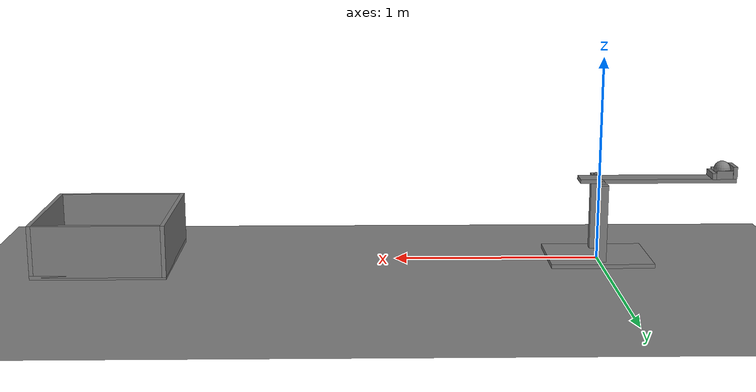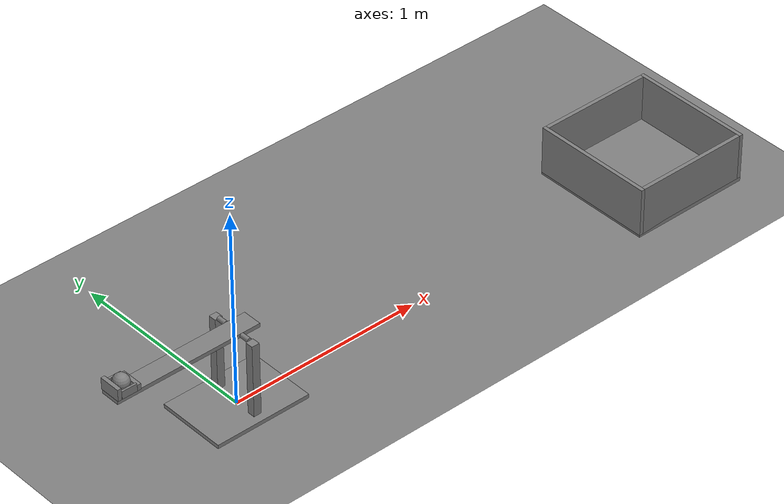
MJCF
<mujoco model="catapult_bucket">
  <compiler angle="degree"/>
  <option timestep="0.002" integrator="implicitfast" gravity="0 0 -9.81"/>
  <worldbody>
    <light name="sun" pos="1 -2 4" dir="0 0.4 -1"/>
    <geom name="floor" type="plane" size="6 3 0.1" pos="0 0 0"/>
    <body name="catapult_base" pos="0 0 0">
      <geom name="catapult_baseplate" type="box" size="0.25 0.18 0.01" pos="0 0 0.01"/>
      <geom name="catapult_post_left" type="box" size="0.02 0.02 0.19" pos="0 0.12 0.21"/>
      <geom name="catapult_post_right" type="box" size="0.02 0.02 0.19" pos="0 -0.12 0.21"/>
      <geom name="catapult_axle_left" type="cylinder" size="0.012 0.024" pos="0 0.076 0.4" euler="90 0 0"/>
      <geom name="catapult_axle_right" type="cylinder" size="0.012 0.024" pos="0 -0.076 0.4" euler="90 0 0"/>
      <body name="catapult_arm" pos="0 0 0.4">
        <joint name="catapult_hinge" type="hinge" axis="0 1 0" range="0 45" limited="true" solreflimit="0.005 1" damping="0"/>
        <geom name="catapult_beam" type="box" size="0.38 0.05 0.01" pos="-0.28 0 0" mass="0.2" priority="1" condim="1" solref="0.005 1"/>
        <geom name="catapult_cup_outer" type="box" size="0.01 0.055 0.03" pos="-0.651 0 0.04" mass="0.03" priority="1" condim="1" solref="0.005 1"/>
        <geom name="catapult_cup_inner" type="box" size="0.01 0.055 0.015" pos="-0.55 0 0.025" mass="0.02" priority="1" condim="1" solref="0.005 1"/>
        <geom name="catapult_cup_side_left" type="box" size="0.04 0.005 0.02" pos="-0.6 0.05 0.03" mass="0.015" priority="1" condim="1" solref="0.005 1"/>
        <geom name="catapult_cup_side_right" type="box" size="0.04 0.005 0.02" pos="-0.6 -0.05 0.03" mass="0.015" priority="1" condim="1" solref="0.005 1"/>
      </body>
    </body>
    <body name="ball" pos="-0.6 0 0.45">
      <freejoint name="ball_free"/>
      <geom name="ball" type="sphere" size="0.04" mass="0.1" condim="6" friction="1 0.005 0.001"/>
    </body>
    <body name="bucket" pos="2.4 0 0">
      <geom name="bucket_floor" type="box" size="0.32 0.32 0.01" pos="0 0 0.01"/>
      <geom name="bucket_wall_far" type="box" size="0.01 0.32 0.125" pos="0.31 0 0.135"/>
      <geom name="bucket_wall_near" type="box" size="0.01 0.32 0.125" pos="-0.31 0 0.135"/>
      <geom name="bucket_wall_left" type="box" size="0.3 0.01 0.125" pos="0 0.31 0.135"/>
      <geom name="bucket_wall_right" type="box" size="0.3 0.01 0.125" pos="0 -0.31 0.135"/>
    </body>
  </worldbody>
  <actuator>
    <velocity name="catapult_drive" joint="catapult_hinge" kv="30" forcelimited="true" forcerange="-15 15"/>
  </actuator>
  <keyframe>
    <key name="start" qpos="0 -0.6 0 0.45 1 0 0 0" qvel="0 0 0 0 0 0 0" ctrl="7.84"/>
  </keyframe>
</mujoco>
